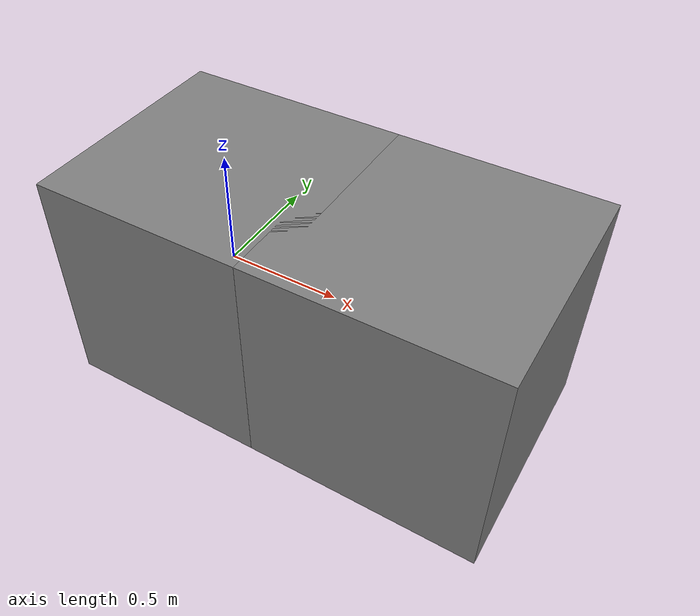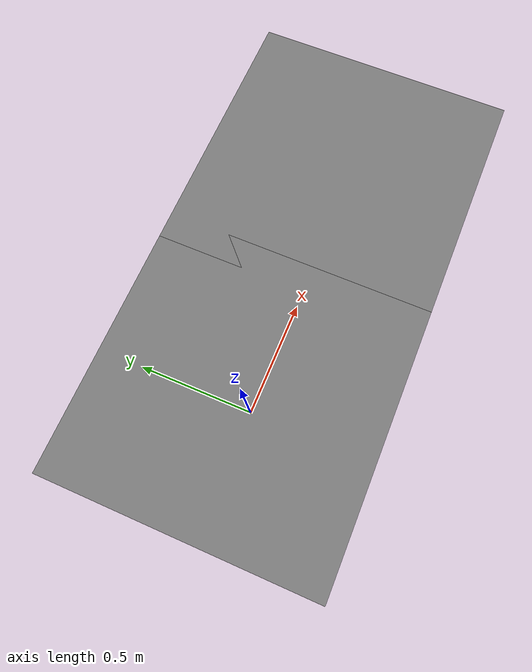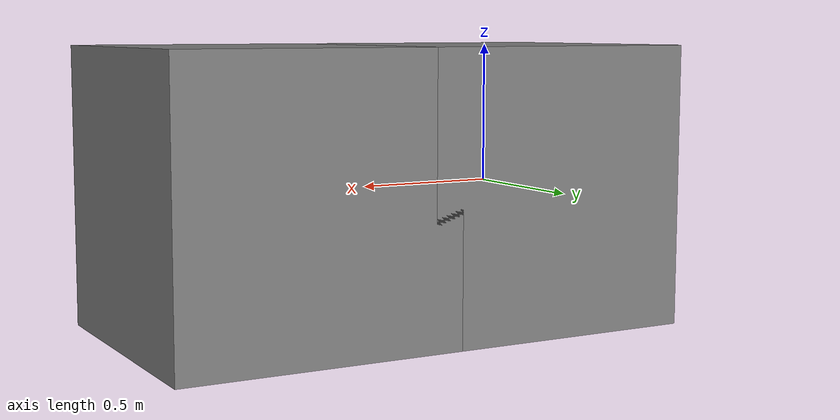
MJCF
<mujoco model="box_box_ff_4">
            <option gravity="0 0 0" timestep="0.001"/>
            <worldbody>
                <body name="box1" pos="0 0 0">
                    <joint type="free"/>
                    <geom type="box" size="0.5 0.5 0.5"/>
                </body>
                <body name="box2" pos="0.9 0 0">
                    <joint type="free"/>
                    <geom type="box" size="0.5 0.5 0.5"/>
                </body>
            </worldbody>
        </mujoco>
